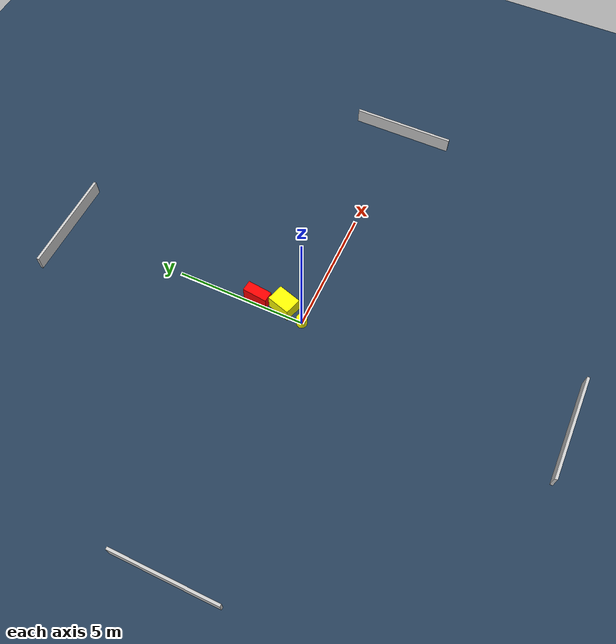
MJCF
<?xml version="1.0" ?>
<mujoco model="generated_environment">
  <option timestep="0.01" integrator="RK4" cone="elliptic"/>
  <default>
    <geom density="1"/>
  </default>
  <asset>
    <texture builtin="gradient" height="3072" name="skybox" rgb1="0.3 0.5 0.7" rgb2="0 0 0" type="skybox" width="512"/>
    <texture builtin="checker" height="300" name="groundplane" rgb1="0.2 0.3 0.4" rgb2="0.1 0.2 0.3" type="2d" width="300"/>
    <material name="groundplane" reflectance="0.2" texrepeat="5 5" texture="groundplane"/>
  </asset>
  <worldbody>
    <light dir="0 0 -1" directional="true" pos="0 0 1.5"/>
    <geom condim="3" friction="0.5 0.005 0.001" material="groundplane" name="floor" pos="0 0 0" size="0 0 0.05" type="plane"/>
    <body name="walls">
      <geom name="wall_1" condim="4" pos="-10.0 0.0 0.3" rgba="0.800000011920929 0.800000011920929 0.800000011920929 1.0" size="0.05 2.0 0.3" type="box"/>
      <geom name="wall_2" condim="4" pos="10.0 0.0 0.3" rgba="0.800000011920929 0.800000011920929 0.800000011920929 1.0" size="0.05 2.0 0.3" type="box"/>
      <geom name="wall_3" condim="4" pos="0.0 -10.0 0.3" rgba="0.800000011920929 0.800000011920929 0.800000011920929 1.0" size="2.0 0.05 0.3" type="box"/>
      <geom name="wall_4" condim="4" pos="0.0 10.0 0.3" rgba="0.800000011920929 0.800000011920929 0.800000011920929 1.0" size="2.0 0.05 0.3" type="box"/>
    </body>
    <body name="robot">
      <joint name="joint_x" type="slide" pos="0 0 0" axis="1 0 0"/>
      <joint name="joint_y" type="slide" pos="0 0 0" axis="0 1 0"/>
      <geom name="robot" type="cylinder" pos="0.0 0.0 0.2" size="0.2 0.2 0.0" mass="5.0" friction="1.0 0.005 0.0001" condim="4" rgba="1.0 1.0 0.0 1.0"/>
    </body>
    <body name="obstacle_1_movable">
      <geom name="obstacle_1_movable" condim="4" pos="0.33760160552432616 0.8752139971564774 0.3" euler="0 0 163.20741708117845" friction="0.0 0.005 0.001" rgba="1.0 1.0 0.0 1.0" size="0.33460052404769647 0.45720714394093265 0.3" type="box" mass="0.1"/>
      <joint type="free"/>
    </body>
    <body name="obstacle_2_static">
      <geom name="obstacle_2_static" condim="4" pos="0.23562782023174164 1.912745814801491 0.3" euler="0 0 83.79211824202432" friction="0.0 0.005 0.001" rgba="1.0 0.0 0.0 1.0" size="0.48179692193875817 0.20600294750124437 0.3" type="box"/>
    </body>
  </worldbody>
  <actuator>
    <motor name="actuator_x" joint="joint_x" gear="1" ctrlrange="-1 1"/>
    <motor name="actuator_y" joint="joint_y" gear="1" ctrlrange="-1 1"/>
  </actuator>
</mujoco>
